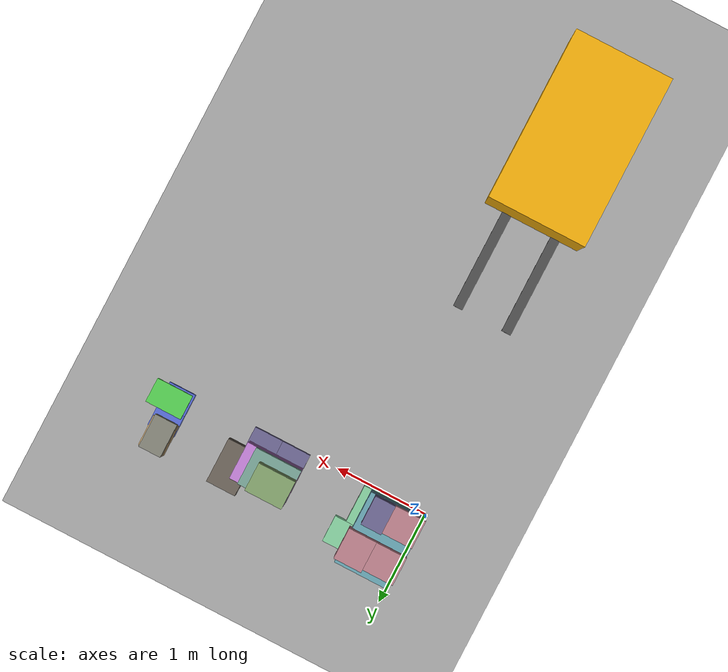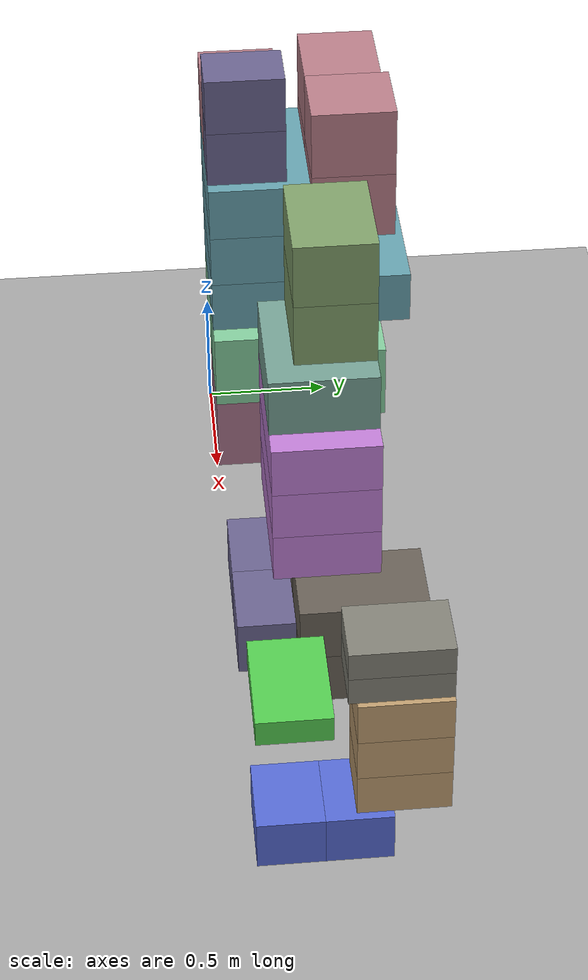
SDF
<sdf version="1.10">
 <world name="pallet_towers">
  <model name="ground_plane">
   <static>true</static>
   <link name="link">
    <collision name="collision">
     <geometry><plane><normal>0 0 1</normal><size>30 30</size></plane></geometry>
     <surface>
      <friction><ode><mu>0.55</mu><mu2>0.55</mu2></ode></friction>
      <bounce><restitution_coefficient>0</restitution_coefficient><threshold>100000</threshold></bounce>
      <contact><ode><kp>1000000</kp><kd>100</kd><max_vel>1</max_vel><min_depth>0.0005</min_depth></ode></contact>
     </surface>
    </collision>
    <visual name="visual">
     <geometry><plane><normal>0 0 1</normal><size>30 30</size></plane></geometry>
     <material><ambient>0.65 0.65 0.65 1</ambient><diffuse>0.65 0.65 0.65 1</diffuse></material>
    </visual>
   </link>
  </model>
  <model name="box_p01_0001_WINE_001_WINE">
   <static>false</static>
   <pose>0.17 0.13 0.306 0 0 0</pose>
   <link name="body">
    <inertial>
     <mass>18</mass>
     <inertia><ixx>0.255</ixx><ixy>0</ixy><ixz>0</ixz><iyy>0.327</iyy><iyz>0</iyz><izz>0.2748</izz></inertia>
    </inertial>
    <collision name="collision">
     <geometry><box><size>0.34 0.26 0.32</size></box></geometry>
     <surface>
      <friction><ode><mu>0.55</mu><mu2>0.55</mu2></ode></friction>
      <bounce><restitution_coefficient>0</restitution_coefficient><threshold>100000</threshold></bounce>
      <contact><ode><kp>1000000</kp><kd>100</kd><max_vel>1</max_vel><min_depth>0.0005</min_depth></ode></contact>
     </surface>
    </collision>
    <visual name="visual">
     <geometry><box><size>0.34 0.26 0.32</size></box></geometry>
     <material>
      <ambient>0.654901961 0.450980392 0.541176471 1</ambient>
      <diffuse>0.654901961 0.450980392 0.541176471 1</diffuse>
      <specular>0.05 0.05 0.05 1</specular>
     </material>
    </visual>
   </link>
  </model>
  <model name="box_p01_0002_WINE_002_WINE">
   <static>false</static>
   <pose>0.51 0.13 0.306 0 0 0</pose>
   <link name="body">
    <inertial>
     <mass>18</mass>
     <inertia><ixx>0.255</ixx><ixy>0</ixy><ixz>0</ixz><iyy>0.327</iyy><iyz>0</iyz><izz>0.2748</izz></inertia>
    </inertial>
    <collision name="collision">
     <geometry><box><size>0.34 0.26 0.32</size></box></geometry>
     <surface>
      <friction><ode><mu>0.55</mu><mu2>0.55</mu2></ode></friction>
      <bounce><restitution_coefficient>0</restitution_coefficient><threshold>100000</threshold></bounce>
      <contact><ode><kp>1000000</kp><kd>100</kd><max_vel>1</max_vel><min_depth>0.0005</min_depth></ode></contact>
     </surface>
    </collision>
    <visual name="visual">
     <geometry><box><size>0.34 0.26 0.32</size></box></geometry>
     <material>
      <ambient>0.654901961 0.450980392 0.541176471 1</ambient>
      <diffuse>0.654901961 0.450980392 0.541176471 1</diffuse>
      <specular>0.05 0.05 0.05 1</specular>
     </material>
    </visual>
   </link>
  </model>
  <model name="box_p01_0003_WINE_003_WINE">
   <static>false</static>
   <pose>0.17 0.39 0.306 0 0 0</pose>
   <link name="body">
    <inertial>
     <mass>18</mass>
     <inertia><ixx>0.255</ixx><ixy>0</ixy><ixz>0</ixz><iyy>0.327</iyy><iyz>0</iyz><izz>0.2748</izz></inertia>
    </inertial>
    <collision name="collision">
     <geometry><box><size>0.34 0.26 0.32</size></box></geometry>
     <surface>
      <friction><ode><mu>0.55</mu><mu2>0.55</mu2></ode></friction>
      <bounce><restitution_coefficient>0</restitution_coefficient><threshold>100000</threshold></bounce>
      <contact><ode><kp>1000000</kp><kd>100</kd><max_vel>1</max_vel><min_depth>0.0005</min_depth></ode></contact>
     </surface>
    </collision>
    <visual name="visual">
     <geometry><box><size>0.34 0.26 0.32</size></box></geometry>
     <material>
      <ambient>0.654901961 0.450980392 0.541176471 1</ambient>
      <diffuse>0.654901961 0.450980392 0.541176471 1</diffuse>
      <specular>0.05 0.05 0.05 1</specular>
     </material>
    </visual>
   </link>
  </model>
  <model name="box_p01_0004_WINE_004_WINE">
   <static>false</static>
   <pose>0.51 0.39 0.306 0 0 0</pose>
   <link name="body">
    <inertial>
     <mass>18</mass>
     <inertia><ixx>0.255</ixx><ixy>0</ixy><ixz>0</ixz><iyy>0.327</iyy><iyz>0</iyz><izz>0.2748</izz></inertia>
    </inertial>
    <collision name="collision">
     <geometry><box><size>0.34 0.26 0.32</size></box></geometry>
     <surface>
      <friction><ode><mu>0.55</mu><mu2>0.55</mu2></ode></friction>
      <bounce><restitution_coefficient>0</restitution_coefficient><threshold>100000</threshold></bounce>
      <contact><ode><kp>1000000</kp><kd>100</kd><max_vel>1</max_vel><min_depth>0.0005</min_depth></ode></contact>
     </surface>
    </collision>
    <visual name="visual">
     <geometry><box><size>0.34 0.26 0.32</size></box></geometry>
     <material>
      <ambient>0.654901961 0.450980392 0.541176471 1</ambient>
      <diffuse>0.654901961 0.450980392 0.541176471 1</diffuse>
      <specular>0.05 0.05 0.05 1</specular>
     </material>
    </visual>
   </link>
  </model>
  <model name="box_p01_0010_DETERG_003_DETERG">
   <static>false</static>
   <pose>0.2 0.14 0.626 0 0 0</pose>
   <link name="body">
    <inertial>
     <mass>7</mass>
     <inertia>
      <ixx>0.105466667</ixx>
      <ixy>0</ixy>
      <ixz>0</ixz>
      <iyy>0.153066667</iyy>
      <iyz>0</iyz>
      <izz>0.139066667</izz>
     </inertia>
    </inertial>
    <collision name="collision">
     <geometry><box><size>0.4 0.28 0.32</size></box></geometry>
     <surface>
      <friction><ode><mu>0.55</mu><mu2>0.55</mu2></ode></friction>
      <bounce><restitution_coefficient>0</restitution_coefficient><threshold>100000</threshold></bounce>
      <contact><ode><kp>1000000</kp><kd>100</kd><max_vel>1</max_vel><min_depth>0.0005</min_depth></ode></contact>
     </surface>
    </collision>
    <visual name="visual">
     <geometry><box><size>0.4 0.28 0.32</size></box></geometry>
     <material>
      <ambient>0.517647059 0.803921569 0.615686275 1</ambient>
      <diffuse>0.517647059 0.803921569 0.615686275 1</diffuse>
      <specular>0.05 0.05 0.05 1</specular>
     </material>
    </visual>
   </link>
  </model>
  <model name="box_p01_0011_DETERG_004_DETERG">
   <static>false</static>
   <pose>0.54 0.2 0.626 0 0 0</pose>
   <link name="body">
    <inertial>
     <mass>7</mass>
     <inertia>
      <ixx>0.153066667</ixx>
      <ixy>0</ixy>
      <ixz>0</ixz>
      <iyy>0.105466667</iyy>
      <iyz>0</iyz>
      <izz>0.139066667</izz>
     </inertia>
    </inertial>
    <collision name="collision">
     <geometry><box><size>0.28 0.4 0.32</size></box></geometry>
     <surface>
      <friction><ode><mu>0.55</mu><mu2>0.55</mu2></ode></friction>
      <bounce><restitution_coefficient>0</restitution_coefficient><threshold>100000</threshold></bounce>
      <contact><ode><kp>1000000</kp><kd>100</kd><max_vel>1</max_vel><min_depth>0.0005</min_depth></ode></contact>
     </surface>
    </collision>
    <visual name="visual">
     <geometry><box><size>0.28 0.4 0.32</size></box></geometry>
     <material>
      <ambient>0.517647059 0.803921569 0.615686275 1</ambient>
      <diffuse>0.517647059 0.803921569 0.615686275 1</diffuse>
      <specular>0.05 0.05 0.05 1</specular>
     </material>
    </visual>
   </link>
  </model>
  <model name="box_p01_0012_DETERG_005_DETERG">
   <static>false</static>
   <pose>0.2 0.42 0.626 0 0 0</pose>
   <link name="body">
    <inertial>
     <mass>7</mass>
     <inertia>
      <ixx>0.105466667</ixx>
      <ixy>0</ixy>
      <ixz>0</ixz>
      <iyy>0.153066667</iyy>
      <iyz>0</iyz>
      <izz>0.139066667</izz>
     </inertia>
    </inertial>
    <collision name="collision">
     <geometry><box><size>0.4 0.28 0.32</size></box></geometry>
     <surface>
      <friction><ode><mu>0.55</mu><mu2>0.55</mu2></ode></friction>
      <bounce><restitution_coefficient>0</restitution_coefficient><threshold>100000</threshold></bounce>
      <contact><ode><kp>1000000</kp><kd>100</kd><max_vel>1</max_vel><min_depth>0.0005</min_depth></ode></contact>
     </surface>
    </collision>
    <visual name="visual">
     <geometry><box><size>0.4 0.28 0.32</size></box></geometry>
     <material>
      <ambient>0.517647059 0.803921569 0.615686275 1</ambient>
      <diffuse>0.517647059 0.803921569 0.615686275 1</diffuse>
      <specular>0.05 0.05 0.05 1</specular>
     </material>
    </visual>
   </link>
  </model>
  <model name="box_p01_0014_DETERG_007_DETERG">
   <static>false</static>
   <pose>0.6 0.54 0.626 0 0 0</pose>
   <link name="body">
    <inertial>
     <mass>7</mass>
     <inertia>
      <ixx>0.105466667</ixx>
      <ixy>0</ixy>
      <ixz>0</ixz>
      <iyy>0.153066667</iyy>
      <iyz>0</iyz>
      <izz>0.139066667</izz>
     </inertia>
    </inertial>
    <collision name="collision">
     <geometry><box><size>0.4 0.28 0.32</size></box></geometry>
     <surface>
      <friction><ode><mu>0.55</mu><mu2>0.55</mu2></ode></friction>
      <bounce><restitution_coefficient>0</restitution_coefficient><threshold>100000</threshold></bounce>
      <contact><ode><kp>1000000</kp><kd>100</kd><max_vel>1</max_vel><min_depth>0.0005</min_depth></ode></contact>
     </surface>
    </collision>
    <visual name="visual">
     <geometry><box><size>0.4 0.28 0.32</size></box></geometry>
     <material>
      <ambient>0.517647059 0.803921569 0.615686275 1</ambient>
      <diffuse>0.517647059 0.803921569 0.615686275 1</diffuse>
      <specular>0.05 0.05 0.05 1</specular>
     </material>
    </visual>
   </link>
  </model>
  <model name="box_p01_0015_APPLES_001_APPLES">
   <static>false</static>
   <pose>0.3 0.2 0.896 0 0 0</pose>
   <link name="body">
    <inertial>
     <mass>12</mass>
     <inertia><ixx>0.2084</ixx><ixy>0</ixy><ixz>0</ixz><iyy>0.4084</iyy><iyz>0</iyz><izz>0.52</izz></inertia>
    </inertial>
    <collision name="collision">
     <geometry><box><size>0.6 0.4 0.22</size></box></geometry>
     <surface>
      <friction><ode><mu>0.55</mu><mu2>0.55</mu2></ode></friction>
      <bounce><restitution_coefficient>0</restitution_coefficient><threshold>100000</threshold></bounce>
      <contact><ode><kp>1000000</kp><kd>100</kd><max_vel>1</max_vel><min_depth>0.0005</min_depth></ode></contact>
     </surface>
    </collision>
    <visual name="visual">
     <geometry><box><size>0.6 0.4 0.22</size></box></geometry>
     <material>
      <ambient>0.4 0.635294118 0.68627451 1</ambient>
      <diffuse>0.4 0.635294118 0.68627451 1</diffuse>
      <specular>0.05 0.05 0.05 1</specular>
     </material>
    </visual>
   </link>
  </model>
  <model name="box_p01_0016_APPLES_002_APPLES">
   <static>false</static>
   <pose>0.3 0.6 0.896 0 0 0</pose>
   <link name="body">
    <inertial>
     <mass>12</mass>
     <inertia><ixx>0.2084</ixx><ixy>0</ixy><ixz>0</ixz><iyy>0.4084</iyy><iyz>0</iyz><izz>0.52</izz></inertia>
    </inertial>
    <collision name="collision">
     <geometry><box><size>0.6 0.4 0.22</size></box></geometry>
     <surface>
      <friction><ode><mu>0.55</mu><mu2>0.55</mu2></ode></friction>
      <bounce><restitution_coefficient>0</restitution_coefficient><threshold>100000</threshold></bounce>
      <contact><ode><kp>1000000</kp><kd>100</kd><max_vel>1</max_vel><min_depth>0.0005</min_depth></ode></contact>
     </surface>
    </collision>
    <visual name="visual">
     <geometry><box><size>0.6 0.4 0.22</size></box></geometry>
     <material>
      <ambient>0.4 0.635294118 0.68627451 1</ambient>
      <diffuse>0.4 0.635294118 0.68627451 1</diffuse>
      <specular>0.05 0.05 0.05 1</specular>
     </material>
    </visual>
   </link>
  </model>
  <model name="box_p01_0017_APPLES_003_APPLES">
   <static>false</static>
   <pose>0.3 0.2 1.116 0 0 0</pose>
   <link name="body">
    <inertial>
     <mass>12</mass>
     <inertia><ixx>0.2084</ixx><ixy>0</ixy><ixz>0</ixz><iyy>0.4084</iyy><iyz>0</iyz><izz>0.52</izz></inertia>
    </inertial>
    <collision name="collision">
     <geometry><box><size>0.6 0.4 0.22</size></box></geometry>
     <surface>
      <friction><ode><mu>0.55</mu><mu2>0.55</mu2></ode></friction>
      <bounce><restitution_coefficient>0</restitution_coefficient><threshold>100000</threshold></bounce>
      <contact><ode><kp>1000000</kp><kd>100</kd><max_vel>1</max_vel><min_depth>0.0005</min_depth></ode></contact>
     </surface>
    </collision>
    <visual name="visual">
     <geometry><box><size>0.6 0.4 0.22</size></box></geometry>
     <material>
      <ambient>0.4 0.635294118 0.68627451 1</ambient>
      <diffuse>0.4 0.635294118 0.68627451 1</diffuse>
      <specular>0.05 0.05 0.05 1</specular>
     </material>
    </visual>
   </link>
  </model>
  <model name="box_p01_0021_APPLES_007_APPLES">
   <static>false</static>
   <pose>0.3 0.2 1.336 0 0 0</pose>
   <link name="body">
    <inertial>
     <mass>12</mass>
     <inertia><ixx>0.2084</ixx><ixy>0</ixy><ixz>0</ixz><iyy>0.4084</iyy><iyz>0</iyz><izz>0.52</izz></inertia>
    </inertial>
    <collision name="collision">
     <geometry><box><size>0.6 0.4 0.22</size></box></geometry>
     <surface>
      <friction><ode><mu>0.55</mu><mu2>0.55</mu2></ode></friction>
      <bounce><restitution_coefficient>0</restitution_coefficient><threshold>100000</threshold></bounce>
      <contact><ode><kp>1000000</kp><kd>100</kd><max_vel>1</max_vel><min_depth>0.0005</min_depth></ode></contact>
     </surface>
    </collision>
    <visual name="visual">
     <geometry><box><size>0.6 0.4 0.22</size></box></geometry>
     <material>
      <ambient>0.4 0.635294118 0.68627451 1</ambient>
      <diffuse>0.4 0.635294118 0.68627451 1</diffuse>
      <specular>0.05 0.05 0.05 1</specular>
     </material>
    </visual>
   </link>
  </model>
  <model name="box_p01_0022_EGGS_001_EGGS">
   <static>false</static>
   <pose>0.165 0.55 1.366 0 0 0</pose>
   <link name="body">
    <inertial>
     <mass>18</mass>
     <inertia><ixx>0.2526</ixx><ixy>0</ixy><ixz>0</ixz><iyy>0.28095</iyy><iyz>0</iyz><izz>0.29835</izz></inertia>
    </inertial>
    <collision name="collision">
     <geometry><box><size>0.33 0.3 0.28</size></box></geometry>
     <surface>
      <friction><ode><mu>0.55</mu><mu2>0.55</mu2></ode></friction>
      <bounce><restitution_coefficient>0</restitution_coefficient><threshold>100000</threshold></bounce>
      <contact><ode><kp>1000000</kp><kd>100</kd><max_vel>1</max_vel><min_depth>0.0005</min_depth></ode></contact>
     </surface>
    </collision>
    <visual name="visual">
     <geometry><box><size>0.33 0.3 0.28</size></box></geometry>
     <material>
      <ambient>0.725490196 0.494117647 0.537254902 1</ambient>
      <diffuse>0.725490196 0.494117647 0.537254902 1</diffuse>
      <specular>0.05 0.05 0.05 1</specular>
     </material>
    </visual>
   </link>
  </model>
  <model name="box_p01_0023_EGGS_002_EGGS">
   <static>false</static>
   <pose>0.48 0.565 1.366 0 0 0</pose>
   <link name="body">
    <inertial>
     <mass>18</mass>
     <inertia><ixx>0.28095</ixx><ixy>0</ixy><ixz>0</ixz><iyy>0.2526</iyy><iyz>0</iyz><izz>0.29835</izz></inertia>
    </inertial>
    <collision name="collision">
     <geometry><box><size>0.3 0.33 0.28</size></box></geometry>
     <surface>
      <friction><ode><mu>0.55</mu><mu2>0.55</mu2></ode></friction>
      <bounce><restitution_coefficient>0</restitution_coefficient><threshold>100000</threshold></bounce>
      <contact><ode><kp>1000000</kp><kd>100</kd><max_vel>1</max_vel><min_depth>0.0005</min_depth></ode></contact>
     </surface>
    </collision>
    <visual name="visual">
     <geometry><box><size>0.3 0.33 0.28</size></box></geometry>
     <material>
      <ambient>0.725490196 0.494117647 0.537254902 1</ambient>
      <diffuse>0.725490196 0.494117647 0.537254902 1</diffuse>
      <specular>0.05 0.05 0.05 1</specular>
     </material>
    </visual>
   </link>
  </model>
  <model name="box_p01_0025_EGGS_004_EGGS">
   <static>false</static>
   <pose>0.165 0.55 1.646 0 0 0</pose>
   <link name="body">
    <inertial>
     <mass>18</mass>
     <inertia><ixx>0.2526</ixx><ixy>0</ixy><ixz>0</ixz><iyy>0.28095</iyy><iyz>0</iyz><izz>0.29835</izz></inertia>
    </inertial>
    <collision name="collision">
     <geometry><box><size>0.33 0.3 0.28</size></box></geometry>
     <surface>
      <friction><ode><mu>0.55</mu><mu2>0.55</mu2></ode></friction>
      <bounce><restitution_coefficient>0</restitution_coefficient><threshold>100000</threshold></bounce>
      <contact><ode><kp>1000000</kp><kd>100</kd><max_vel>1</max_vel><min_depth>0.0005</min_depth></ode></contact>
     </surface>
    </collision>
    <visual name="visual">
     <geometry><box><size>0.33 0.3 0.28</size></box></geometry>
     <material>
      <ambient>0.725490196 0.494117647 0.537254902 1</ambient>
      <diffuse>0.725490196 0.494117647 0.537254902 1</diffuse>
      <specular>0.05 0.05 0.05 1</specular>
     </material>
    </visual>
   </link>
  </model>
  <model name="box_p01_0026_EGGS_005_EGGS">
   <static>false</static>
   <pose>0.48 0.565 1.646 0 0 0</pose>
   <link name="body">
    <inertial>
     <mass>18</mass>
     <inertia><ixx>0.28095</ixx><ixy>0</ixy><ixz>0</ixz><iyy>0.2526</iyy><iyz>0</iyz><izz>0.29835</izz></inertia>
    </inertial>
    <collision name="collision">
     <geometry><box><size>0.3 0.33 0.28</size></box></geometry>
     <surface>
      <friction><ode><mu>0.55</mu><mu2>0.55</mu2></ode></friction>
      <bounce><restitution_coefficient>0</restitution_coefficient><threshold>100000</threshold></bounce>
      <contact><ode><kp>1000000</kp><kd>100</kd><max_vel>1</max_vel><min_depth>0.0005</min_depth></ode></contact>
     </surface>
    </collision>
    <visual name="visual">
     <geometry><box><size>0.3 0.33 0.28</size></box></geometry>
     <material>
      <ambient>0.725490196 0.494117647 0.537254902 1</ambient>
      <diffuse>0.725490196 0.494117647 0.537254902 1</diffuse>
      <specular>0.05 0.05 0.05 1</specular>
     </material>
    </visual>
   </link>
  </model>
  <model name="box_p01_0028_EGGS_007_EGGS">
   <static>false</static>
   <pose>0.165 0.15 1.586 0 0 0</pose>
   <link name="body">
    <inertial>
     <mass>18</mass>
     <inertia><ixx>0.2526</ixx><ixy>0</ixy><ixz>0</ixz><iyy>0.28095</iyy><iyz>0</iyz><izz>0.29835</izz></inertia>
    </inertial>
    <collision name="collision">
     <geometry><box><size>0.33 0.3 0.28</size></box></geometry>
     <surface>
      <friction><ode><mu>0.55</mu><mu2>0.55</mu2></ode></friction>
      <bounce><restitution_coefficient>0</restitution_coefficient><threshold>100000</threshold></bounce>
      <contact><ode><kp>1000000</kp><kd>100</kd><max_vel>1</max_vel><min_depth>0.0005</min_depth></ode></contact>
     </surface>
    </collision>
    <visual name="visual">
     <geometry><box><size>0.33 0.3 0.28</size></box></geometry>
     <material>
      <ambient>0.725490196 0.494117647 0.537254902 1</ambient>
      <diffuse>0.725490196 0.494117647 0.537254902 1</diffuse>
      <specular>0.05 0.05 0.05 1</specular>
     </material>
    </visual>
   </link>
  </model>
  <model name="box_p01_0031_SUGAR_003_SUGAR">
   <static>false</static>
   <pose>0.44 0.155 1.561 0 0 0</pose>
   <link name="body">
    <inertial>
     <mass>10</mass>
     <inertia>
      <ixx>0.124166667</ixx>
      <ixy>0</ixy>
      <ixz>0</ixz>
      <iyy>0.0844166667</iyy>
      <iyz>0</iyz>
      <izz>0.120416667</izz>
     </inertia>
    </inertial>
    <collision name="collision">
     <geometry><box><size>0.22 0.31 0.23</size></box></geometry>
     <surface>
      <friction><ode><mu>0.55</mu><mu2>0.55</mu2></ode></friction>
      <bounce><restitution_coefficient>0</restitution_coefficient><threshold>100000</threshold></bounce>
      <contact><ode><kp>1000000</kp><kd>100</kd><max_vel>1</max_vel><min_depth>0.0005</min_depth></ode></contact>
     </surface>
    </collision>
    <visual name="visual">
     <geometry><box><size>0.22 0.31 0.23</size></box></geometry>
     <material>
      <ambient>0.419607843 0.392156863 0.564705882 1</ambient>
      <diffuse>0.419607843 0.392156863 0.564705882 1</diffuse>
      <specular>0.05 0.05 0.05 1</specular>
     </material>
    </visual>
   </link>
  </model>
  <model name="box_p01_0032_SUGAR_004_SUGAR">
   <static>false</static>
   <pose>0.44 0.155 1.791 0 0 0</pose>
   <link name="body">
    <inertial>
     <mass>10</mass>
     <inertia>
      <ixx>0.124166667</ixx>
      <ixy>0</ixy>
      <ixz>0</ixz>
      <iyy>0.0844166667</iyy>
      <iyz>0</iyz>
      <izz>0.120416667</izz>
     </inertia>
    </inertial>
    <collision name="collision">
     <geometry><box><size>0.22 0.31 0.23</size></box></geometry>
     <surface>
      <friction><ode><mu>0.55</mu><mu2>0.55</mu2></ode></friction>
      <bounce><restitution_coefficient>0</restitution_coefficient><threshold>100000</threshold></bounce>
      <contact><ode><kp>1000000</kp><kd>100</kd><max_vel>1</max_vel><min_depth>0.0005</min_depth></ode></contact>
     </surface>
    </collision>
    <visual name="visual">
     <geometry><box><size>0.22 0.31 0.23</size></box></geometry>
     <material>
      <ambient>0.419607843 0.392156863 0.564705882 1</ambient>
      <diffuse>0.419607843 0.392156863 0.564705882 1</diffuse>
      <specular>0.05 0.05 0.05 1</specular>
     </material>
    </visual>
   </link>
  </model>
  <model name="box_p02_0001_SUGAR_006_SUGAR">
   <static>false</static>
   <pose>1.455 0.11 0.261 0 0 0</pose>
   <link name="body">
    <inertial>
     <mass>10</mass>
     <inertia>
      <ixx>0.0844166667</ixx>
      <ixy>0</ixy>
      <ixz>0</ixz>
      <iyy>0.124166667</iyy>
      <iyz>0</iyz>
      <izz>0.120416667</izz>
     </inertia>
    </inertial>
    <collision name="collision">
     <geometry><box><size>0.31 0.22 0.23</size></box></geometry>
     <surface>
      <friction><ode><mu>0.55</mu><mu2>0.55</mu2></ode></friction>
      <bounce><restitution_coefficient>0</restitution_coefficient><threshold>100000</threshold></bounce>
      <contact><ode><kp>1000000</kp><kd>100</kd><max_vel>1</max_vel><min_depth>0.0005</min_depth></ode></contact>
     </surface>
    </collision>
    <visual name="visual">
     <geometry><box><size>0.31 0.22 0.23</size></box></geometry>
     <material>
      <ambient>0.419607843 0.392156863 0.564705882 1</ambient>
      <diffuse>0.419607843 0.392156863 0.564705882 1</diffuse>
      <specular>0.05 0.05 0.05 1</specular>
     </material>
    </visual>
   </link>
  </model>
  <model name="box_p02_0002_SUGAR_007_SUGAR">
   <static>false</static>
   <pose>1.765 0.11 0.261 0 0 0</pose>
   <link name="body">
    <inertial>
     <mass>10</mass>
     <inertia>
      <ixx>0.0844166667</ixx>
      <ixy>0</ixy>
      <ixz>0</ixz>
      <iyy>0.124166667</iyy>
      <iyz>0</iyz>
      <izz>0.120416667</izz>
     </inertia>
    </inertial>
    <collision name="collision">
     <geometry><box><size>0.31 0.22 0.23</size></box></geometry>
     <surface>
      <friction><ode><mu>0.55</mu><mu2>0.55</mu2></ode></friction>
      <bounce><restitution_coefficient>0</restitution_coefficient><threshold>100000</threshold></bounce>
      <contact><ode><kp>1000000</kp><kd>100</kd><max_vel>1</max_vel><min_depth>0.0005</min_depth></ode></contact>
     </surface>
    </collision>
    <visual name="visual">
     <geometry><box><size>0.31 0.22 0.23</size></box></geometry>
     <material>
      <ambient>0.419607843 0.392156863 0.564705882 1</ambient>
      <diffuse>0.419607843 0.392156863 0.564705882 1</diffuse>
      <specular>0.05 0.05 0.05 1</specular>
     </material>
    </visual>
   </link>
  </model>
  <model name="box_p02_0003_FLOUR_001_FLOUR">
   <static>false</static>
   <pose>1.54 0.38 0.256 0 0 0</pose>
   <link name="body">
    <inertial>
     <mass>15</mass>
     <inertia><ixx>0.1885</ixx><ixy>0</ixy><ixz>0</ixz><iyy>0.3485</iyy><iyz>0</iyz><izz>0.416</izz></inertia>
    </inertial>
    <collision name="collision">
     <geometry><box><size>0.48 0.32 0.22</size></box></geometry>
     <surface>
      <friction><ode><mu>0.55</mu><mu2>0.55</mu2></ode></friction>
      <bounce><restitution_coefficient>0</restitution_coefficient><threshold>100000</threshold></bounce>
      <contact><ode><kp>1000000</kp><kd>100</kd><max_vel>1</max_vel><min_depth>0.0005</min_depth></ode></contact>
     </surface>
    </collision>
    <visual name="visual">
     <geometry><box><size>0.48 0.32 0.22</size></box></geometry>
     <material>
      <ambient>0.411764706 0.380392157 0.341176471 1</ambient>
      <diffuse>0.411764706 0.380392157 0.341176471 1</diffuse>
      <specular>0.05 0.05 0.05 1</specular>
     </material>
    </visual>
   </link>
  </model>
  <model name="box_p02_0004_FLOUR_002_FLOUR">
   <static>false</static>
   <pose>1.94 0.46 0.256 0 0 0</pose>
   <link name="body">
    <inertial>
     <mass>15</mass>
     <inertia><ixx>0.3485</ixx><ixy>0</ixy><ixz>0</ixz><iyy>0.1885</iyy><iyz>0</iyz><izz>0.416</izz></inertia>
    </inertial>
    <collision name="collision">
     <geometry><box><size>0.32 0.48 0.22</size></box></geometry>
     <surface>
      <friction><ode><mu>0.55</mu><mu2>0.55</mu2></ode></friction>
      <bounce><restitution_coefficient>0</restitution_coefficient><threshold>100000</threshold></bounce>
      <contact><ode><kp>1000000</kp><kd>100</kd><max_vel>1</max_vel><min_depth>0.0005</min_depth></ode></contact>
     </surface>
    </collision>
    <visual name="visual">
     <geometry><box><size>0.32 0.48 0.22</size></box></geometry>
     <material>
      <ambient>0.411764706 0.380392157 0.341176471 1</ambient>
      <diffuse>0.411764706 0.380392157 0.341176471 1</diffuse>
      <specular>0.05 0.05 0.05 1</specular>
     </material>
    </visual>
   </link>
  </model>
  <model name="box_p02_0008_FLOUR_006_FLOUR">
   <static>false</static>
   <pose>1.54 0.38 0.476 0 0 0</pose>
   <link name="body">
    <inertial>
     <mass>15</mass>
     <inertia><ixx>0.1885</ixx><ixy>0</ixy><ixz>0</ixz><iyy>0.3485</iyy><iyz>0</iyz><izz>0.416</izz></inertia>
    </inertial>
    <collision name="collision">
     <geometry><box><size>0.48 0.32 0.22</size></box></geometry>
     <surface>
      <friction><ode><mu>0.55</mu><mu2>0.55</mu2></ode></friction>
      <bounce><restitution_coefficient>0</restitution_coefficient><threshold>100000</threshold></bounce>
      <contact><ode><kp>1000000</kp><kd>100</kd><max_vel>1</max_vel><min_depth>0.0005</min_depth></ode></contact>
     </surface>
    </collision>
    <visual name="visual">
     <geometry><box><size>0.48 0.32 0.22</size></box></geometry>
     <material>
      <ambient>0.411764706 0.380392157 0.341176471 1</ambient>
      <diffuse>0.411764706 0.380392157 0.341176471 1</diffuse>
      <specular>0.05 0.05 0.05 1</specular>
     </material>
    </visual>
   </link>
  </model>
  <model name="box_p02_0009_FLOUR_007_FLOUR">
   <static>false</static>
   <pose>1.94 0.46 0.476 0 0 0</pose>
   <link name="body">
    <inertial>
     <mass>15</mass>
     <inertia><ixx>0.3485</ixx><ixy>0</ixy><ixz>0</ixz><iyy>0.1885</iyy><iyz>0</iyz><izz>0.416</izz></inertia>
    </inertial>
    <collision name="collision">
     <geometry><box><size>0.32 0.48 0.22</size></box></geometry>
     <surface>
      <friction><ode><mu>0.55</mu><mu2>0.55</mu2></ode></friction>
      <bounce><restitution_coefficient>0</restitution_coefficient><threshold>100000</threshold></bounce>
      <contact><ode><kp>1000000</kp><kd>100</kd><max_vel>1</max_vel><min_depth>0.0005</min_depth></ode></contact>
     </surface>
    </collision>
    <visual name="visual">
     <geometry><box><size>0.32 0.48 0.22</size></box></geometry>
     <material>
      <ambient>0.411764706 0.380392157 0.341176471 1</ambient>
      <diffuse>0.411764706 0.380392157 0.341176471 1</diffuse>
      <specular>0.05 0.05 0.05 1</specular>
     </material>
    </visual>
   </link>
  </model>
  <model name="box_p02_0012_BREAD_003_BREAD">
   <static>false</static>
   <pose>1.6 0.34 0.686 0 0 0</pose>
   <link name="body">
    <inertial>
     <mass>4.5</mass>
     <inertia><ixx>0.075</ixx><ixy>0</ixy><ixz>0</ixz><iyy>0.15</iyy><iyz>0</iyz><izz>0.195</izz></inertia>
    </inertial>
    <collision name="collision">
     <geometry><box><size>0.6 0.4 0.2</size></box></geometry>
     <surface>
      <friction><ode><mu>0.55</mu><mu2>0.55</mu2></ode></friction>
      <bounce><restitution_coefficient>0</restitution_coefficient><threshold>100000</threshold></bounce>
      <contact><ode><kp>1000000</kp><kd>100</kd><max_vel>1</max_vel><min_depth>0.0005</min_depth></ode></contact>
     </surface>
    </collision>
    <visual name="visual">
     <geometry><box><size>0.6 0.4 0.2</size></box></geometry>
     <material>
      <ambient>0.756862745 0.498039216 0.839215686 1</ambient>
      <diffuse>0.756862745 0.498039216 0.839215686 1</diffuse>
      <specular>0.05 0.05 0.05 1</specular>
     </material>
    </visual>
   </link>
  </model>
  <model name="box_p02_0014_BREAD_005_BREAD">
   <static>false</static>
   <pose>1.6 0.34 0.886 0 0 0</pose>
   <link name="body">
    <inertial>
     <mass>4.5</mass>
     <inertia><ixx>0.075</ixx><ixy>0</ixy><ixz>0</ixz><iyy>0.15</iyy><iyz>0</iyz><izz>0.195</izz></inertia>
    </inertial>
    <collision name="collision">
     <geometry><box><size>0.6 0.4 0.2</size></box></geometry>
     <surface>
      <friction><ode><mu>0.55</mu><mu2>0.55</mu2></ode></friction>
      <bounce><restitution_coefficient>0</restitution_coefficient><threshold>100000</threshold></bounce>
      <contact><ode><kp>1000000</kp><kd>100</kd><max_vel>1</max_vel><min_depth>0.0005</min_depth></ode></contact>
     </surface>
    </collision>
    <visual name="visual">
     <geometry><box><size>0.6 0.4 0.2</size></box></geometry>
     <material>
      <ambient>0.756862745 0.498039216 0.839215686 1</ambient>
      <diffuse>0.756862745 0.498039216 0.839215686 1</diffuse>
      <specular>0.05 0.05 0.05 1</specular>
     </material>
    </visual>
   </link>
  </model>
  <model name="box_p02_0016_BREAD_007_BREAD">
   <static>false</static>
   <pose>1.6 0.34 1.086 0 0 0</pose>
   <link name="body">
    <inertial>
     <mass>4.5</mass>
     <inertia><ixx>0.075</ixx><ixy>0</ixy><ixz>0</ixz><iyy>0.15</iyy><iyz>0</iyz><izz>0.195</izz></inertia>
    </inertial>
    <collision name="collision">
     <geometry><box><size>0.6 0.4 0.2</size></box></geometry>
     <surface>
      <friction><ode><mu>0.55</mu><mu2>0.55</mu2></ode></friction>
      <bounce><restitution_coefficient>0</restitution_coefficient><threshold>100000</threshold></bounce>
      <contact><ode><kp>1000000</kp><kd>100</kd><max_vel>1</max_vel><min_depth>0.0005</min_depth></ode></contact>
     </surface>
    </collision>
    <visual name="visual">
     <geometry><box><size>0.6 0.4 0.2</size></box></geometry>
     <material>
      <ambient>0.756862745 0.498039216 0.839215686 1</ambient>
      <diffuse>0.756862745 0.498039216 0.839215686 1</diffuse>
      <specular>0.05 0.05 0.05 1</specular>
     </material>
    </visual>
   </link>
  </model>
  <model name="box_p02_0023_BANANA_007_BANANA">
   <static>false</static>
   <pose>1.55 0.34 1.301 0 0 0</pose>
   <link name="body">
    <inertial>
     <mass>18</mass>
     <inertia><ixx>0.31935</ixx><ixy>0</ixy><ixz>0</ixz><iyy>0.45435</iyy><iyz>0</iyz><izz>0.615</izz></inertia>
    </inertial>
    <collision name="collision">
     <geometry><box><size>0.5 0.4 0.23</size></box></geometry>
     <surface>
      <friction><ode><mu>0.55</mu><mu2>0.55</mu2></ode></friction>
      <bounce><restitution_coefficient>0</restitution_coefficient><threshold>100000</threshold></bounce>
      <contact><ode><kp>1000000</kp><kd>100</kd><max_vel>1</max_vel><min_depth>0.0005</min_depth></ode></contact>
     </surface>
    </collision>
    <visual name="visual">
     <geometry><box><size>0.5 0.4 0.23</size></box></geometry>
     <material>
      <ambient>0.462745098 0.635294118 0.584313725 1</ambient>
      <diffuse>0.462745098 0.635294118 0.584313725 1</diffuse>
      <specular>0.05 0.05 0.05 1</specular>
     </material>
    </visual>
   </link>
  </model>
  <model name="box_p02_0025_COFFEE_002_COFFEE">
   <static>false</static>
   <pose>1.5 0.39 1.541 0 0 0</pose>
   <link name="body">
    <inertial>
     <mass>13</mass>
     <inertia>
      <ixx>0.165208333</ixx>
      <ixy>0</ixy>
      <ixz>0</ixz>
      <iyy>0.241041667</iyy>
      <iyz>0</iyz>
      <izz>0.270833333</izz>
     </inertia>
    </inertial>
    <collision name="collision">
     <geometry><box><size>0.4 0.3 0.25</size></box></geometry>
     <surface>
      <friction><ode><mu>0.55</mu><mu2>0.55</mu2></ode></friction>
      <bounce><restitution_coefficient>0</restitution_coefficient><threshold>100000</threshold></bounce>
      <contact><ode><kp>1000000</kp><kd>100</kd><max_vel>1</max_vel><min_depth>0.0005</min_depth></ode></contact>
     </surface>
    </collision>
    <visual name="visual">
     <geometry><box><size>0.4 0.3 0.25</size></box></geometry>
     <material>
      <ambient>0.505882353 0.631372549 0.419607843 1</ambient>
      <diffuse>0.505882353 0.631372549 0.419607843 1</diffuse>
      <specular>0.05 0.05 0.05 1</specular>
     </material>
    </visual>
   </link>
  </model>
  <model name="box_p02_0029_COFFEE_006_COFFEE">
   <static>false</static>
   <pose>1.5 0.39 1.791 0 0 0</pose>
   <link name="body">
    <inertial>
     <mass>13</mass>
     <inertia>
      <ixx>0.165208333</ixx>
      <ixy>0</ixy>
      <ixz>0</ixz>
      <iyy>0.241041667</iyy>
      <iyz>0</iyz>
      <izz>0.270833333</izz>
     </inertia>
    </inertial>
    <collision name="collision">
     <geometry><box><size>0.4 0.3 0.25</size></box></geometry>
     <surface>
      <friction><ode><mu>0.55</mu><mu2>0.55</mu2></ode></friction>
      <bounce><restitution_coefficient>0</restitution_coefficient><threshold>100000</threshold></bounce>
      <contact><ode><kp>1000000</kp><kd>100</kd><max_vel>1</max_vel><min_depth>0.0005</min_depth></ode></contact>
     </surface>
    </collision>
    <visual name="visual">
     <geometry><box><size>0.4 0.3 0.25</size></box></geometry>
     <material>
      <ambient>0.505882353 0.631372549 0.419607843 1</ambient>
      <diffuse>0.505882353 0.631372549 0.419607843 1</diffuse>
      <specular>0.05 0.05 0.05 1</specular>
     </material>
    </visual>
   </link>
  </model>
  <model name="box_p03_0001_CHOCO_003_CHOCO">
   <static>false</static>
   <pose>2.745 0.12 0.246 0 0 0</pose>
   <link name="body">
    <inertial>
     <mass>6</mass>
     <inertia><ixx>0.0488</ixx><ixy>0</ixy><ixz>0</ixz><iyy>0.06205</iyy><iyz>0</iyz><izz>0.07085</izz></inertia>
    </inertial>
    <collision name="collision">
     <geometry><box><size>0.29 0.24 0.2</size></box></geometry>
     <surface>
      <friction><ode><mu>0.55</mu><mu2>0.55</mu2></ode></friction>
      <bounce><restitution_coefficient>0</restitution_coefficient><threshold>100000</threshold></bounce>
      <contact><ode><kp>1000000</kp><kd>100</kd><max_vel>1</max_vel><min_depth>0.0005</min_depth></ode></contact>
     </surface>
    </collision>
    <visual name="visual">
     <geometry><box><size>0.29 0.24 0.2</size></box></geometry>
     <material>
      <ambient>0.337254902 0.419607843 0.835294118 1</ambient>
      <diffuse>0.337254902 0.419607843 0.835294118 1</diffuse>
      <specular>0.05 0.05 0.05 1</specular>
     </material>
    </visual>
   </link>
  </model>
  <model name="box_p03_0003_CHOCO_005_CHOCO">
   <static>false</static>
   <pose>2.745 0.36 0.246 0 0 0</pose>
   <link name="body">
    <inertial>
     <mass>6</mass>
     <inertia><ixx>0.0488</ixx><ixy>0</ixy><ixz>0</ixz><iyy>0.06205</iyy><iyz>0</iyz><izz>0.07085</izz></inertia>
    </inertial>
    <collision name="collision">
     <geometry><box><size>0.29 0.24 0.2</size></box></geometry>
     <surface>
      <friction><ode><mu>0.55</mu><mu2>0.55</mu2></ode></friction>
      <bounce><restitution_coefficient>0</restitution_coefficient><threshold>100000</threshold></bounce>
      <contact><ode><kp>1000000</kp><kd>100</kd><max_vel>1</max_vel><min_depth>0.0005</min_depth></ode></contact>
     </surface>
    </collision>
    <visual name="visual">
     <geometry><box><size>0.29 0.24 0.2</size></box></geometry>
     <material>
      <ambient>0.337254902 0.419607843 0.835294118 1</ambient>
      <diffuse>0.337254902 0.419607843 0.835294118 1</diffuse>
      <specular>0.05 0.05 0.05 1</specular>
     </material>
    </visual>
   </link>
  </model>
  <model name="box_p03_0016_HONEY_004_HONEY">
   <static>false</static>
   <pose>2.73 0.515 0.431 0 0 0</pose>
   <link name="body">
    <inertial>
     <mass>8</mass>
     <inertia>
      <ixx>0.0918666667</ixx>
      <ixy>0</ixy>
      <ixz>0</ixz>
      <iyy>0.0643333333</iyy>
      <iyz>0</iyz>
      <izz>0.117666667</izz>
     </inertia>
    </inertial>
    <collision name="collision">
     <geometry><box><size>0.26 0.33 0.17</size></box></geometry>
     <surface>
      <friction><ode><mu>0.55</mu><mu2>0.55</mu2></ode></friction>
      <bounce><restitution_coefficient>0</restitution_coefficient><threshold>100000</threshold></bounce>
      <contact><ode><kp>1000000</kp><kd>100</kd><max_vel>1</max_vel><min_depth>0.0005</min_depth></ode></contact>
     </surface>
    </collision>
    <visual name="visual">
     <geometry><box><size>0.26 0.33 0.17</size></box></geometry>
     <material>
      <ambient>0.752941176 0.623529412 0.443137255 1</ambient>
      <diffuse>0.752941176 0.623529412 0.443137255 1</diffuse>
      <specular>0.05 0.05 0.05 1</specular>
     </material>
    </visual>
   </link>
  </model>
  <model name="box_p03_0017_HONEY_005_HONEY">
   <static>false</static>
   <pose>2.73 0.515 0.601 0 0 0</pose>
   <link name="body">
    <inertial>
     <mass>8</mass>
     <inertia>
      <ixx>0.0918666667</ixx>
      <ixy>0</ixy>
      <ixz>0</ixz>
      <iyy>0.0643333333</iyy>
      <iyz>0</iyz>
      <izz>0.117666667</izz>
     </inertia>
    </inertial>
    <collision name="collision">
     <geometry><box><size>0.26 0.33 0.17</size></box></geometry>
     <surface>
      <friction><ode><mu>0.55</mu><mu2>0.55</mu2></ode></friction>
      <bounce><restitution_coefficient>0</restitution_coefficient><threshold>100000</threshold></bounce>
      <contact><ode><kp>1000000</kp><kd>100</kd><max_vel>1</max_vel><min_depth>0.0005</min_depth></ode></contact>
     </surface>
    </collision>
    <visual name="visual">
     <geometry><box><size>0.26 0.33 0.17</size></box></geometry>
     <material>
      <ambient>0.752941176 0.623529412 0.443137255 1</ambient>
      <diffuse>0.752941176 0.623529412 0.443137255 1</diffuse>
      <specular>0.05 0.05 0.05 1</specular>
     </material>
    </visual>
   </link>
  </model>
  <model name="box_p03_0019_HONEY_007_HONEY">
   <static>false</static>
   <pose>2.73 0.515 0.771 0 0 0</pose>
   <link name="body">
    <inertial>
     <mass>8</mass>
     <inertia>
      <ixx>0.0918666667</ixx>
      <ixy>0</ixy>
      <ixz>0</ixz>
      <iyy>0.0643333333</iyy>
      <iyz>0</iyz>
      <izz>0.117666667</izz>
     </inertia>
    </inertial>
    <collision name="collision">
     <geometry><box><size>0.26 0.33 0.17</size></box></geometry>
     <surface>
      <friction><ode><mu>0.55</mu><mu2>0.55</mu2></ode></friction>
      <bounce><restitution_coefficient>0</restitution_coefficient><threshold>100000</threshold></bounce>
      <contact><ode><kp>1000000</kp><kd>100</kd><max_vel>1</max_vel><min_depth>0.0005</min_depth></ode></contact>
     </surface>
    </collision>
    <visual name="visual">
     <geometry><box><size>0.26 0.33 0.17</size></box></geometry>
     <material>
      <ambient>0.752941176 0.623529412 0.443137255 1</ambient>
      <diffuse>0.752941176 0.623529412 0.443137255 1</diffuse>
      <specular>0.05 0.05 0.05 1</specular>
     </material>
    </visual>
   </link>
  </model>
  <model name="box_p03_0024_YOGURT_005_YOGURT">
   <static>false</static>
   <pose>2.795 0.13 0.896 0 0 0</pose>
   <link name="body">
    <inertial>
     <mass>5</mass>
     <inertia>
      <ixx>0.0323333333</ixx>
      <ixy>0</ixy>
      <ixz>0</ixz>
      <iyy>0.0675416667</iyy>
      <iyz>0</iyz>
      <izz>0.0915416667</izz>
     </inertia>
    </inertial>
    <collision name="collision">
     <geometry><box><size>0.39 0.26 0.1</size></box></geometry>
     <surface>
      <friction><ode><mu>0.55</mu><mu2>0.55</mu2></ode></friction>
      <bounce><restitution_coefficient>0</restitution_coefficient><threshold>100000</threshold></bounce>
      <contact><ode><kp>1000000</kp><kd>100</kd><max_vel>1</max_vel><min_depth>0.0005</min_depth></ode></contact>
     </surface>
    </collision>
    <visual name="visual">
     <geometry><box><size>0.39 0.26 0.1</size></box></geometry>
     <material>
      <ambient>0.329411765 0.803921569 0.31372549 1</ambient>
      <diffuse>0.329411765 0.803921569 0.31372549 1</diffuse>
      <specular>0.05 0.05 0.05 1</specular>
     </material>
    </visual>
   </link>
  </model>
  <model name="box_p03_0031_BUTTER_005_BUTTER">
   <static>false</static>
   <pose>2.72 0.5 0.911 0 0 0</pose>
   <link name="body">
    <inertial>
     <mass>10</mass>
     <inertia>
      <ixx>0.118083333</ixx>
      <ixy>0</ixy>
      <ixz>0</ixz>
      <iyy>0.0580833333</iyy>
      <iyz>0</iyz>
      <izz>0.156</izz>
     </inertia>
    </inertial>
    <collision name="collision">
     <geometry><box><size>0.24 0.36 0.11</size></box></geometry>
     <surface>
      <friction><ode><mu>0.55</mu><mu2>0.55</mu2></ode></friction>
      <bounce><restitution_coefficient>0</restitution_coefficient><threshold>100000</threshold></bounce>
      <contact><ode><kp>1000000</kp><kd>100</kd><max_vel>1</max_vel><min_depth>0.0005</min_depth></ode></contact>
     </surface>
    </collision>
    <visual name="visual">
     <geometry><box><size>0.24 0.36 0.11</size></box></geometry>
     <material>
      <ambient>0.51372549 0.509803922 0.466666667 1</ambient>
      <diffuse>0.51372549 0.509803922 0.466666667 1</diffuse>
      <specular>0.05 0.05 0.05 1</specular>
     </material>
    </visual>
   </link>
  </model>
  <model name="box_p03_0032_BUTTER_006_BUTTER">
   <static>false</static>
   <pose>2.72 0.5 1.021 0 0 0</pose>
   <link name="body">
    <inertial>
     <mass>10</mass>
     <inertia>
      <ixx>0.118083333</ixx>
      <ixy>0</ixy>
      <ixz>0</ixz>
      <iyy>0.0580833333</iyy>
      <iyz>0</iyz>
      <izz>0.156</izz>
     </inertia>
    </inertial>
    <collision name="collision">
     <geometry><box><size>0.24 0.36 0.11</size></box></geometry>
     <surface>
      <friction><ode><mu>0.55</mu><mu2>0.55</mu2></ode></friction>
      <bounce><restitution_coefficient>0</restitution_coefficient><threshold>100000</threshold></bounce>
      <contact><ode><kp>1000000</kp><kd>100</kd><max_vel>1</max_vel><min_depth>0.0005</min_depth></ode></contact>
     </surface>
    </collision>
    <visual name="visual">
     <geometry><box><size>0.24 0.36 0.11</size></box></geometry>
     <material>
      <ambient>0.51372549 0.509803922 0.466666667 1</ambient>
      <diffuse>0.51372549 0.509803922 0.466666667 1</diffuse>
      <specular>0.05 0.05 0.05 1</specular>
     </material>
    </visual>
   </link>
  </model>
  <model name="forklift">
   <static>false</static>
   <pose>0.4 -3.982 0 0 0 1.57079633</pose>
   <allow_auto_disable>false</allow_auto_disable>
   <canonical_link>base_link</canonical_link>
   <link name="base_link">
    <inertial>
     <pose>0 0 1.025 0 0 0</pose>
     <mass>2500</mass>
     <inertia>
      <ixx>1105.20833</ixx>
      <ixy>0</ixy>
      <ixz>0</ixz>
      <iyy>1573.20833</iyy>
      <iyz>0</iyz>
      <izz>927.375</izz>
     </inertia>
    </inertial>
    <collision name="body_collision">
     <pose>0 0 1.025 0 0 0</pose>
     <geometry><box><size>1.83 1.05 2.05</size></box></geometry>
     <surface>
      <friction><ode><mu>0.9</mu><mu2>0.9</mu2></ode></friction>
      <bounce><restitution_coefficient>0</restitution_coefficient><threshold>100000</threshold></bounce>
      <contact><ode><kp>1000000</kp><kd>100</kd><max_vel>0.5</max_vel><min_depth>0.0005</min_depth></ode></contact>
     </surface>
    </collision>
    <visual name="body_visual">
     <pose>0 0 1.025 0 0 0</pose>
     <geometry><box><size>1.83 1.05 2.05</size></box></geometry>
     <material>
      <ambient>0.82 0.55 0.02 1</ambient>
      <diffuse>0.95 0.68 0.04 1</diffuse>
      <specular>0.08 0.08 0.08 1</specular>
     </material>
    </visual>
   </link>
   <link name="left_fork_link">
    <pose>1.4485 0.275 0.05 0 0 0</pose>
    <inertial>
     <mass>35</mass>
     <inertia>
      <ixx>0.0350116667</ixx>
      <ixy>0</ixy>
      <ixz>0</ixz>
      <iyy>3.32525958</iyy>
      <iyz>0</iyz>
      <izz>3.35093792</izz>
     </inertia>
    </inertial>
    <collision name="left_fork_collision">
     <geometry><box><size>1.067 0.102 0.04</size></box></geometry>
     <surface>
      <friction><ode><mu>0.85</mu><mu2>0.85</mu2></ode></friction>
      <bounce><restitution_coefficient>0</restitution_coefficient><threshold>100000</threshold></bounce>
      <contact><ode><kp>1000000</kp><kd>100</kd><max_vel>0.5</max_vel><min_depth>0.0002</min_depth></ode></contact>
     </surface>
    </collision>
    <visual name="left_fork_visual">
     <geometry><box><size>1.067 0.102 0.04</size></box></geometry>
     <material>
      <ambient>0.18 0.18 0.18 1</ambient>
      <diffuse>0.30 0.30 0.30 1</diffuse>
      <specular>0.20 0.20 0.20 1</specular>
     </material>
    </visual>
   </link>
   <link name="right_fork_link">
    <pose>1.4485 -0.275 0.05 0 0 0</pose>
    <inertial>
     <mass>35</mass>
     <inertia>
      <ixx>0.0350116667</ixx>
      <ixy>0</ixy>
      <ixz>0</ixz>
      <iyy>3.32525958</iyy>
      <iyz>0</iyz>
      <izz>3.35093792</izz>
     </inertia>
    </inertial>
    <collision name="right_fork_collision">
     <geometry><box><size>1.067 0.102 0.04</size></box></geometry>
     <surface>
      <friction><ode><mu>0.85</mu><mu2>0.85</mu2></ode></friction>
      <bounce><restitution_coefficient>0</restitution_coefficient><threshold>100000</threshold></bounce>
      <contact><ode><kp>1000000</kp><kd>100</kd><max_vel>0.5</max_vel><min_depth>0.0002</min_depth></ode></contact>
     </surface>
    </collision>
    <visual name="right_fork_visual">
     <geometry><box><size>1.067 0.102 0.04</size></box></geometry>
     <material>
      <ambient>0.18 0.18 0.18 1</ambient>
      <diffuse>0.30 0.30 0.30 1</diffuse>
      <specular>0.20 0.20 0.20 1</specular>
     </material>
    </visual>
   </link>
   <joint name="left_fork_joint" type="prismatic">
    <parent>base_link</parent>
    <child>left_fork_link</child>
    <axis>
     <xyz>0 0 1</xyz>
     <limit><lower>0</lower><upper>1.98</upper><effort>250000</effort><velocity>0.15</velocity></limit>
     <dynamics><damping>50</damping><friction>5</friction></dynamics>
    </axis>
   </joint>
   <joint name="right_fork_joint" type="prismatic">
    <parent>base_link</parent>
    <child>right_fork_link</child>
    <axis>
     <xyz>0 0 1</xyz>
     <limit><lower>0</lower><upper>1.98</upper><effort>250000</effort><velocity>0.15</velocity></limit>
     <dynamics><damping>50</damping><friction>5</friction></dynamics>
    </axis>
   </joint>
   <plugin filename="gz-sim-velocity-control-system" name="gz::sim::systems::VelocityControl">
    <topic>/forklift/cmd_vel</topic>
   </plugin>
   <plugin filename="gz-sim-joint-controller-system" name="gz::sim::systems::JointController">
    <joint_name>left_fork_joint</joint_name>
    <topic>/forklift/left_fork/cmd_vel</topic>
    <use_force_commands>false</use_force_commands>
   </plugin>
   <plugin filename="gz-sim-joint-controller-system" name="gz::sim::systems::JointController">
    <joint_name>right_fork_joint</joint_name>
    <topic>/forklift/right_fork/cmd_vel</topic>
    <use_force_commands>false</use_force_commands>
   </plugin>
  </model>
 </world>
</sdf>
